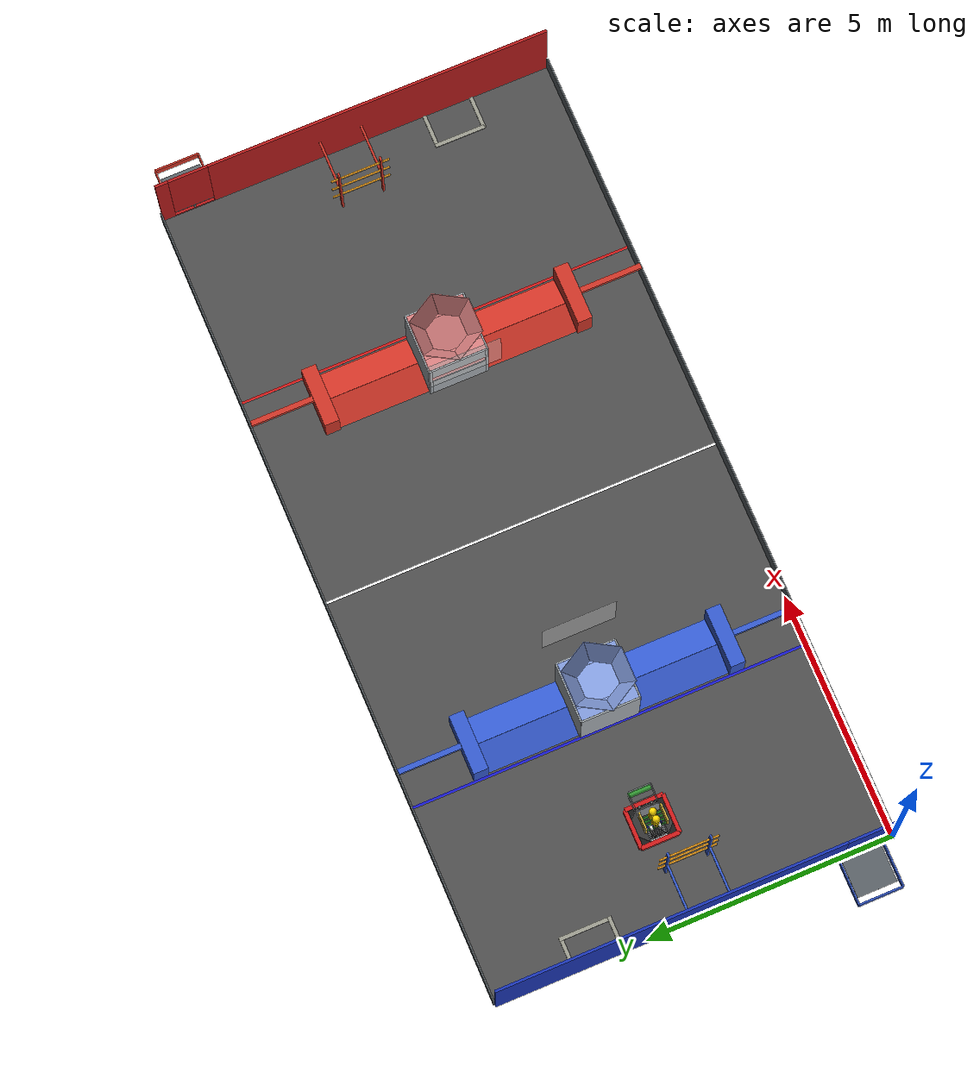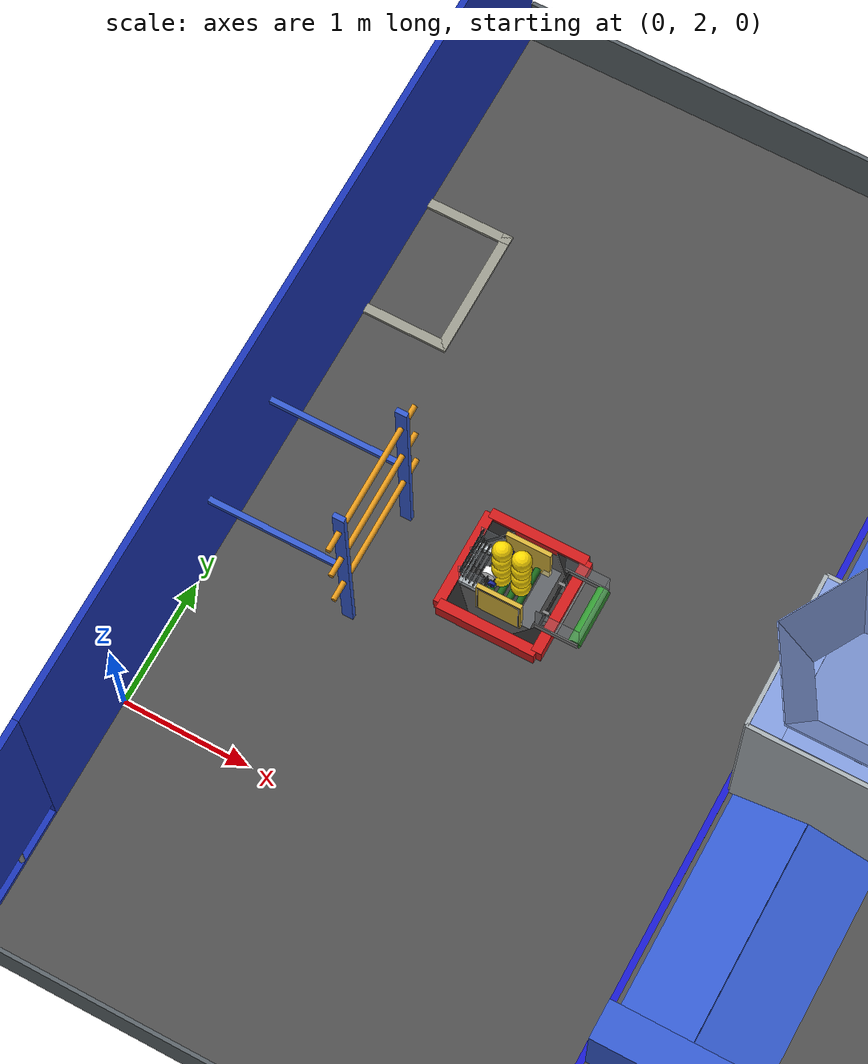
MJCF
<mujoco model="frc_swerve_robot_nofuel">
  <!--
  GENERATED FILE - do not edit.
  Produced from robot.xml by make_nofuel_models.py.
  Re-run that script after changing the source model.
--><compiler angle="radian" autolimits="true" />

  <option gravity="0 0 -9.81" timestep="0.005" solver="PGS" iterations="50" />

  <visual>
    <headlight ambient="0.5 0.5 0.5" />
  </visual>

  <default>
    <joint damping="0.1" armature="0.001" />
    <geom friction="0.3 0.005 0.0001" condim="3" />
    <motor ctrllimited="true" ctrlrange="-100 100" />
    <default class="fuel">
      <geom friction="0.8 0.005 0.0001" condim="3" />
    </default>
  </default>

  <asset>
    <material name="chassis_mat" rgba="0.2 0.2 0.2 1" />
    <material name="bumper_mat" rgba="0.8 0.1 0.1 1" />
    <material name="wheel_mat" rgba="0.1 0.1 0.1 1" />
    <material name="module_mat" rgba="0.4 0.4 0.4 1" />
    <material name="roller_mat" rgba="0.2 0.6 0.2 1" />
    <material name="bar_mat" rgba="0.5 0.5 0.5 1" />
    <material name="polycarb_mat" rgba="0.8 0.85 0.9 0.3" />
    <material name="aluminum_mat" rgba="0.75 0.78 0.8 1" />
    <material name="dark_green_mat" rgba="0.1 0.4 0.1 1" />
    <material name="dark_blue_mat" rgba="0.1 0.15 0.6 1" />
    <material name="red_mat" rgba="0.8 0.1 0.1 1" />
    <material name="white_mat" rgba="0.95 0.95 0.95 1" />
    <material name="gold_mat" rgba="0.83 0.69 0.22 1" />
    <material name="led_mat" rgba="0.1 0.1 0.1 1" emission="1" />
    <!-- Right-triangle prism: right angle at origin, legs along +X and +Y, 3" legs, chassis height -->
    <mesh name="corner_wedge" vertex="0 0 -0.0254  0.18 0 -0.0254  0 0.18 -0.0254  0 0 0.0254  0.18 0 0.0254  0 0.18 0.0254" face="0 2 1  3 4 5  0 3 5  0 5 2  0 1 4  0 4 3  1 2 5  1 5 4" />
  </asset>

  <include file="field_nofuel.xml" />

  <worldbody>
    <!-- Robot base (chassis) - freejoint allows 6DOF movement -->
    <!-- Starting position: blue alliance zone, centered on field width -->
    <body name="chassis" pos="2.0 4.035 0.07">
      <freejoint name="chassis_joint" />

      <!-- IMU site for sensors -->
      <site name="imu_site" pos="0 0 0" size="0.01" />

      <!-- Chassis geometry (27.5" x 27.5" x ~4" frame) -->
      <geom name="chassis_geom" type="box" size="0.349 0.349 0.027" mass="34.6" material="chassis_mat" contype="2" conaffinity="1" />

      <!-- Corner wedges (swerve module mounts) -->
      <geom name="corner_fl" type="mesh" mesh="corner_wedge" pos="0.349 0.349 0.0524" euler="0 0 3.14159" mass="0.2" material="wheel_mat" contype="0" conaffinity="0" />
      <geom name="corner_fr" type="mesh" mesh="corner_wedge" pos="0.349 -0.349 0.0524" euler="0 0 1.5708" mass="0.2" material="wheel_mat" contype="0" conaffinity="0" />
      <geom name="corner_bl" type="mesh" mesh="corner_wedge" pos="-0.349 0.349 0.0524" euler="0 0 -1.5708" mass="0.2" material="wheel_mat" contype="0" conaffinity="0" />
      <geom name="corner_br" type="mesh" mesh="corner_wedge" pos="-0.349 -0.349 0.0524" mass="0.2" material="wheel_mat" contype="0" conaffinity="0" />

      <!-- Bumpers (3.25" thick, 5.5" tall, top 3" above chassis) -->
      <geom name="bumper_front" type="box" pos="0.39 0 0.03128" size="0.04 0.39 0.06993" mass="2" material="bumper_mat" friction="0.4 0.005 0.0001" contype="2" conaffinity="1" />
      <geom name="bumper_back" type="box" pos="-0.39 0 0.03128" size="0.04 0.39 0.06993" mass="2" material="bumper_mat" friction="0.4 0.005 0.0001" contype="2" conaffinity="1" />
      <geom name="bumper_left" type="box" pos="0 0.39 0.03128" size="0.39 0.04 0.06993" mass="2" material="bumper_mat" friction="0.4 0.005 0.0001" contype="2" conaffinity="1" />
      <geom name="bumper_right" type="box" pos="0 -0.39 0.03128" size="0.39 0.04 0.06993" mass="2" material="bumper_mat" friction="0.4 0.005 0.0001" contype="2" conaffinity="1" />

      <!-- Front Left Module -->
      <body name="fl_module" pos="0.28 0.28 -0.02">
        <joint name="fl_steer" type="hinge" axis="0 0 1" damping="1.0" armature="0.011" frictionloss="2.0" />
        <geom name="fl_housing" type="cylinder" size="0.04 0.03" mass="1" material="wheel_mat" contype="0" conaffinity="0" />
        <body name="fl_wheel_body" pos="0 0 0">
          <joint name="fl_drive" type="hinge" axis="0 1 0" damping="0.01" armature="0.0025" />
          <geom name="fl_wheel" type="cylinder" size="0.05 0.02" euler="1.5708 0 0" mass="0.5" material="wheel_mat" friction="1.5 0.005 0.0001" contype="2" conaffinity="1" />
        </body>
      </body>

      <!-- Front Right Module -->
      <body name="fr_module" pos="0.28 -0.28 -0.02">
        <joint name="fr_steer" type="hinge" axis="0 0 1" damping="1.0" armature="0.011" frictionloss="2.0" />
        <geom name="fr_housing" type="cylinder" size="0.04 0.03" mass="1" material="wheel_mat" contype="0" conaffinity="0" />
        <body name="fr_wheel_body" pos="0 0 0">
          <joint name="fr_drive" type="hinge" axis="0 1 0" damping="0.01" armature="0.0025" />
          <geom name="fr_wheel" type="cylinder" size="0.05 0.02" euler="1.5708 0 0" mass="0.5" material="wheel_mat" friction="1.5 0.005 0.0001" contype="2" conaffinity="1" />
        </body>
      </body>

      <!-- Back Left Module -->
      <body name="bl_module" pos="-0.28 0.28 -0.02">
        <joint name="bl_steer" type="hinge" axis="0 0 1" damping="1.0" armature="0.011" frictionloss="2.0" />
        <geom name="bl_housing" type="cylinder" size="0.04 0.03" mass="1" material="wheel_mat" contype="0" conaffinity="0" />
        <body name="bl_wheel_body" pos="0 0 0">
          <joint name="bl_drive" type="hinge" axis="0 1 0" damping="0.01" armature="0.0025" />
          <geom name="bl_wheel" type="cylinder" size="0.05 0.02" euler="1.5708 0 0" mass="0.5" material="wheel_mat" friction="1.5 0.005 0.0001" contype="2" conaffinity="1" />
        </body>
      </body>

      <!-- Back Right Module -->
      <body name="br_module" pos="-0.28 -0.28 -0.02">
        <joint name="br_steer" type="hinge" axis="0 0 1" damping="1.0" armature="0.011" frictionloss="2.0" />
        <geom name="br_housing" type="cylinder" size="0.04 0.03" mass="1" material="wheel_mat" contype="0" conaffinity="0" />
        <body name="br_wheel_body" pos="0 0 0">
          <joint name="br_drive" type="hinge" axis="0 1 0" damping="0.01" armature="0.0025" />
          <geom name="br_wheel" type="cylinder" size="0.05 0.02" euler="1.5708 0 0" mass="0.5" material="wheel_mat" friction="1.5 0.005 0.0001" contype="2" conaffinity="1" />
        </body>
      </body>

      <!-- Hopper rollers: 4 coupled rollers along Y axis -->
      <body name="hopper_roller_1" pos="-0.121 -0.0285 0.056">
        <joint name="hopper_roller_1_joint" type="hinge" axis="0 1 0" damping="0.001" armature="0.001" />
        <geom name="hopper_roller_1_geom" type="cylinder" size="0.0255 0.2035" euler="1.5708 0 0" mass="0.65" material="dark_green_mat" friction="2.0 0.005 0.0001" contype="2" conaffinity="1" />
      </body>
      <body name="hopper_roller_2" pos="-0.045 -0.0285 0.063">
        <joint name="hopper_roller_2_joint" type="hinge" axis="0 1 0" damping="0.001" armature="0.001" />
        <geom name="hopper_roller_2_geom" type="cylinder" size="0.0255 0.2035" euler="1.5708 0 0" mass="0.65" material="dark_green_mat" friction="2.0 0.005 0.0001" contype="2" conaffinity="1" />
      </body>
      <body name="hopper_roller_3" pos="0.031 -0.0285 0.070">
        <joint name="hopper_roller_3_joint" type="hinge" axis="0 1 0" damping="0.001" armature="0.001" />
        <geom name="hopper_roller_3_geom" type="cylinder" size="0.0255 0.2035" euler="1.5708 0 0" mass="0.65" material="dark_green_mat" friction="2.0 0.005 0.0001" contype="2" conaffinity="1" />
      </body>
      <body name="hopper_roller_4" pos="0.107 -0.0285 0.077">
        <joint name="hopper_roller_4_joint" type="hinge" axis="0 1 0" damping="0.001" armature="0.001" />
        <geom name="hopper_roller_4_geom" type="cylinder" size="0.0255 0.2035" euler="1.5708 0 0" mass="0.65" material="dark_green_mat" friction="2.0 0.005 0.0001" contype="2" conaffinity="1" />
      </body>

      <!-- Hopper walls -->
      <geom name="hopper_wall_left" type="box" pos="0.02 0.1925 0.2225" size="0.177 0.0175 0.1955" mass="1.0" material="gold_mat" contype="2" conaffinity="1" />
      <geom name="hopper_wall_right" type="box" pos="0.02 -0.2495 0.2225" size="0.177 0.0175 0.1955" mass="1.0" material="gold_mat" contype="2" conaffinity="1" />

      <!-- LED strips on outside of hopper walls (inverted U shape) -->
      <!-- Left wall LEDs (outer face y=0.21, strips 2mm out) -->
      <geom name="led_left_0" type="box" pos="-0.142 0.212 0.2225" size="0.005 0.002 0.1805" mass="0.003" material="led_mat" contype="0" conaffinity="0" />
      <geom name="led_left_1" type="box" pos="0.02 0.212 0.403" size="0.167 0.002 0.005" mass="0.003" material="led_mat" contype="0" conaffinity="0" />
      <geom name="led_left_2" type="box" pos="0.182 0.212 0.2225" size="0.005 0.002 0.1805" mass="0.003" material="led_mat" contype="0" conaffinity="0" />
      <!-- Right wall LEDs (outer face y=-0.267, strips 2mm out) -->
      <geom name="led_right_0" type="box" pos="-0.142 -0.269 0.2225" size="0.005 0.002 0.1805" mass="0.003" material="led_mat" contype="0" conaffinity="0" />
      <geom name="led_right_1" type="box" pos="0.02 -0.269 0.403" size="0.167 0.002 0.005" mass="0.003" material="led_mat" contype="0" conaffinity="0" />
      <geom name="led_right_2" type="box" pos="0.182 -0.269 0.2225" size="0.005 0.002 0.1805" mass="0.003" material="led_mat" contype="0" conaffinity="0" />

      <!-- Polycarbonate plate between hopper and intake -->
      <geom name="hopper_intake_plate" type="box" pos="0.2116 -0.0254 0.1143" size="0.0615 0.2413 0.0016" mass="0.3" material="polycarb_mat" contype="2" conaffinity="1" />

      <!-- Shooter base: U-shaped mount on back of frame -->
      <geom name="shooter_base_back" type="box" pos="-0.3363 0 0.0524" size="0.0127 0.166 0.0254" mass="0.5" material="aluminum_mat" contype="2" conaffinity="1" />
      <geom name="shooter_base_left" type="box" pos="-0.2475 0.146 0.0524" size="0.1015 0.02 0.0254" mass="0.5" material="aluminum_mat" contype="2" conaffinity="1" />
      <geom name="shooter_base_right" type="box" pos="-0.2475 -0.146 0.0524" size="0.1015 0.02 0.0254" mass="0.5" material="aluminum_mat" contype="2" conaffinity="1" />

      <!-- Shooter walls: two side walls + center divider, 0.33m tall from chassis top -->
      <geom name="shooter_wall_left" type="box" pos="-0.2475 0.166 0.192" size="0.1015 0.003 0.165" mass="0.3" material="polycarb_mat" contype="2" conaffinity="1" />
      <geom name="shooter_wall_right" type="box" pos="-0.2475 -0.166 0.192" size="0.1015 0.003 0.165" mass="0.3" material="polycarb_mat" contype="2" conaffinity="1" />
      <geom name="shooter_wall_center" type="box" pos="-0.2475 0 0.192" size="0.1015 0.003 0.165" mass="0.3" material="polycarb_mat" contype="2" conaffinity="1" />

      <!-- Shooter feeding wheels: 4 wheels (2 per channel), all coupled -->
      <body name="shooter_feed_inner_left" pos="-0.098 0.0285 0.247">
        <joint name="shooter_feed_inner_left_joint" type="hinge" axis="0 1 0" damping="0.001" armature="0.001" />
        <geom name="shooter_feed_inner_left_geom" type="cylinder" size="0.0283 0.0125" euler="1.5708 0 0" mass="0.036" material="dark_blue_mat" friction="2.0 0.005 0.0001" contype="2" conaffinity="1" />
      </body>
      <body name="shooter_feed_inner_right" pos="-0.098 -0.0285 0.247">
        <joint name="shooter_feed_inner_right_joint" type="hinge" axis="0 1 0" damping="0.001" armature="0.001" />
        <geom name="shooter_feed_inner_right_geom" type="cylinder" size="0.0283 0.0125" euler="1.5708 0 0" mass="0.036" material="dark_blue_mat" friction="2.0 0.005 0.0001" contype="2" conaffinity="1" />
      </body>
      <body name="shooter_feed_outer_left" pos="-0.098 0.1371 0.247">
        <joint name="shooter_feed_outer_left_joint" type="hinge" axis="0 1 0" damping="0.001" armature="0.001" />
        <geom name="shooter_feed_outer_left_geom" type="cylinder" size="0.0283 0.0125" euler="1.5708 0 0" mass="0.036" material="dark_blue_mat" friction="2.0 0.005 0.0001" contype="2" conaffinity="1" />
      </body>
      <body name="shooter_feed_outer_right" pos="-0.098 -0.1371 0.247">
        <joint name="shooter_feed_outer_right_joint" type="hinge" axis="0 1 0" damping="0.001" armature="0.001" />
        <geom name="shooter_feed_outer_right_geom" type="cylinder" size="0.0283 0.0125" euler="1.5708 0 0" mass="0.036" material="dark_blue_mat" friction="2.0 0.005 0.0001" contype="2" conaffinity="1" />
      </body>

      <!-- Shooter flywheels: one per channel, each independently driven -->
      <body name="shooter_flywheel_left" pos="-0.142 0.083 0.285">
        <joint name="shooter_flywheel_left_joint" type="hinge" axis="0 1 0" damping="0.00001" armature="0.001" />
        <geom name="shooter_flywheel_left_geom" type="cylinder" size="0.05 0.026" euler="1.5708 0 0" mass="0.54" material="white_mat" friction="2.0 0.005 0.0001" contype="2" conaffinity="1" />
      </body>
      <body name="shooter_flywheel_right" pos="-0.142 -0.083 0.285">
        <joint name="shooter_flywheel_right_joint" type="hinge" axis="0 1 0" damping="0.00001" armature="0.001" />
        <geom name="shooter_flywheel_right_geom" type="cylinder" size="0.05 0.026" euler="1.5708 0 0" mass="0.54" material="white_mat" friction="2.0 0.005 0.0001" contype="2" conaffinity="1" />
      </body>

      <!-- Shooter churros: 10 track guides from left to right wall -->
      <geom name="shooter_churro_1" type="cylinder" pos="-0.160 0 0.086" size="0.007 0.166" euler="1.5708 0 0" mass="0.1" material="wheel_mat" contype="2" conaffinity="1" />
      <geom name="shooter_churro_2" type="cylinder" pos="-0.198 0 0.086" size="0.007 0.166" euler="1.5708 0 0" mass="0.1" material="wheel_mat" contype="2" conaffinity="1" />
      <geom name="shooter_churro_3" type="cylinder" pos="-0.234 0 0.101" size="0.007 0.166" euler="1.5708 0 0" mass="0.1" material="wheel_mat" contype="2" conaffinity="1" />
      <geom name="shooter_churro_4" type="cylinder" pos="-0.266 0 0.123" size="0.007 0.166" euler="1.5708 0 0" mass="0.1" material="wheel_mat" contype="2" conaffinity="1" />
      <geom name="shooter_churro_5" type="cylinder" pos="-0.294 0 0.151" size="0.007 0.166" euler="1.5708 0 0" mass="0.1" material="wheel_mat" contype="2" conaffinity="1" />
      <geom name="shooter_churro_6" type="cylinder" pos="-0.315 0 0.184" size="0.007 0.166" euler="1.5708 0 0" mass="0.1" material="wheel_mat" contype="2" conaffinity="1" />
      <geom name="shooter_churro_7" type="cylinder" pos="-0.328 0 0.221" size="0.007 0.166" euler="1.5708 0 0" mass="0.1" material="wheel_mat" contype="2" conaffinity="1" />
      <geom name="shooter_churro_8" type="cylinder" pos="-0.335 0 0.260" size="0.007 0.166" euler="1.5708 0 0" mass="0.1" material="wheel_mat" contype="2" conaffinity="1" />
      <geom name="shooter_churro_9" type="cylinder" pos="-0.333 0 0.299" size="0.007 0.166" euler="1.5708 0 0" mass="0.1" material="wheel_mat" contype="2" conaffinity="1" />
      <geom name="shooter_churro_10" type="cylinder" pos="-0.323 0 0.337" size="0.007 0.166" euler="1.5708 0 0" mass="0.1" material="wheel_mat" contype="2" conaffinity="1" />

      <!-- Shooter feed axle -->
      <geom name="shooter_feed_axle" type="cylinder" pos="-0.098 0 0.247" size="0.007 0.166" euler="1.5708 0 0" mass="0.3" material="wheel_mat" contype="2" conaffinity="1" />

      <!-- Shooter flywheel axle -->
      <geom name="shooter_flywheel_axle" type="cylinder" pos="-0.142 0 0.285" size="0.007 0.166" euler="1.5708 0 0" mass="0.3" material="wheel_mat" contype="2" conaffinity="1" />

      <!-- Intake support blocks: 2x1" aluminum, 5.875" tall from chassis top -->
      <geom name="intake_support_left" type="box" pos="0.324 0.1207 0.1016" size="0.0254 0.0127 0.0746" mass="0.4" material="bar_mat" contype="2" conaffinity="1" />
      <geom name="intake_support_right" type="box" pos="0.324 -0.1207 0.1016" size="0.0254 0.0127 0.0746" mass="0.4" material="bar_mat" contype="2" conaffinity="1" />

      <!-- Intake assembly: pivots on hinge 0.025m behind frame edge, 4.875" above chassis top -->
      <body name="intake" pos="0.324 0 0.151">
        <joint name="intake_hinge" type="hinge" axis="0 1 0" damping="0.5" armature="0.005" limited="true" range="-1.5708 0.21" />

        <!-- Axle bar through shields -->
        <geom name="intake_axle_bar" type="cylinder" pos="0 0 0" size="0.01 0.2275" euler="1.5708 0 0" mass="0.8" material="wheel_mat" contype="2" conaffinity="1" />

        <!-- Roller: spinning cylinder -->
        <body name="intake_roller" pos="0.279 0 0">
          <joint name="intake_roller_joint" type="hinge" axis="0 1 0" damping="0.001" armature="0.001" />
          <geom name="intake_roller_geom" type="cylinder" size="0.0508 0.2275" euler="1.5708 0 0" mass="0.5" material="roller_mat" friction="2.0 0.005 0.0001" contype="2" conaffinity="1" />
        </body>

        <!-- Backing bar -->
        <geom name="intake_backing_bar" type="cylinder" pos="0.127 0 -0.021" size="0.00735 0.2275" euler="1.5708 0 0" mass="1.5" material="bar_mat" contype="2" conaffinity="1" />

        <!-- Side bars -->
        <geom name="intake_bar_left" type="box" pos="0.1395 0.235 0.003" size="0.1715 0.005 0.03" mass="0.6" material="bar_mat" contype="2" conaffinity="1" />
        <geom name="intake_bar_right" type="box" pos="0.1395 -0.235 0.003" size="0.1715 0.005 0.03" mass="0.6" material="bar_mat" contype="2" conaffinity="1" />

        <!-- Polycarbonate side shields -->
        <geom name="intake_shield_left" type="box" pos="0.1395 0.2285 0.152" size="0.1715 0.0015 0.119" mass="0.3" material="polycarb_mat" contype="2" conaffinity="1" />
        <geom name="intake_shield_right" type="box" pos="0.1395 -0.2285 0.152" size="0.1715 0.0015 0.119" mass="0.3" material="polycarb_mat" contype="2" conaffinity="1" />

        <!-- Front polycarbonate shield -->
        <geom name="intake_shield_front" type="box" pos="0.3125 0 0.152" size="0.0015 0.2275 0.119" mass="0.4" material="polycarb_mat" contype="2" conaffinity="1" />
      </body>

    </body>
  </worldbody>

  <!-- Actuators: voltage-controlled motors -->
  <actuator>
    <motor name="fl_steer_motor" joint="fl_steer" gear="1" />
    <motor name="fr_steer_motor" joint="fr_steer" gear="1" />
    <motor name="bl_steer_motor" joint="bl_steer" gear="1" />
    <motor name="br_steer_motor" joint="br_steer" gear="1" />

    <motor name="fl_drive_motor" joint="fl_drive" gear="1" />
    <motor name="fr_drive_motor" joint="fr_drive" gear="1" />
    <motor name="bl_drive_motor" joint="bl_drive" gear="1" />
    <motor name="br_drive_motor" joint="br_drive" gear="1" />

    <motor name="intake_hinge_motor" joint="intake_hinge" gear="1" />
    <motor name="intake_roller_motor" joint="intake_roller_joint" gear="1" />

    <motor name="hopper_roller_motor" joint="hopper_roller_1_joint" gear="1" />

    <motor name="shooter_feed_motor" joint="shooter_feed_inner_left_joint" gear="1" />

    <motor name="shooter_flywheel_motor" joint="shooter_flywheel_left_joint" gear="1" />
  </actuator>

  <!-- Sensors for feedback to WPILib -->
  <sensor>
    <jointpos name="fl_steer_pos" joint="fl_steer" />
    <jointpos name="fr_steer_pos" joint="fr_steer" />
    <jointpos name="bl_steer_pos" joint="bl_steer" />
    <jointpos name="br_steer_pos" joint="br_steer" />

    <jointpos name="fl_drive_pos" joint="fl_drive" />
    <jointpos name="fr_drive_pos" joint="fr_drive" />
    <jointpos name="bl_drive_pos" joint="bl_drive" />
    <jointpos name="br_drive_pos" joint="br_drive" />

    <jointvel name="fl_steer_vel" joint="fl_steer" />
    <jointvel name="fr_steer_vel" joint="fr_steer" />
    <jointvel name="bl_steer_vel" joint="bl_steer" />
    <jointvel name="br_steer_vel" joint="br_steer" />

    <jointvel name="fl_drive_vel" joint="fl_drive" />
    <jointvel name="fr_drive_vel" joint="fr_drive" />
    <jointvel name="bl_drive_vel" joint="bl_drive" />
    <jointvel name="br_drive_vel" joint="br_drive" />

    <gyro name="chassis_gyro" site="imu_site" />
    <accelerometer name="chassis_accel" site="imu_site" />
  </sensor>

  <equality>
    <joint joint1="hopper_roller_1_joint" joint2="hopper_roller_2_joint" polycoef="0 1 0 0 0" />
    <joint joint1="hopper_roller_1_joint" joint2="hopper_roller_3_joint" polycoef="0 1 0 0 0" />
    <joint joint1="hopper_roller_1_joint" joint2="hopper_roller_4_joint" polycoef="0 1 0 0 0" />
    <joint joint1="shooter_feed_inner_left_joint" joint2="shooter_feed_inner_right_joint" polycoef="0 1 0 0 0" />
    <joint joint1="shooter_feed_inner_left_joint" joint2="shooter_feed_outer_left_joint" polycoef="0 1 0 0 0" />
    <joint joint1="shooter_feed_inner_left_joint" joint2="shooter_feed_outer_right_joint" polycoef="0 1 0 0 0" />
    <joint joint1="shooter_flywheel_left_joint" joint2="shooter_flywheel_right_joint" polycoef="0 1 0 0 0" />
  </equality>

  <contact>
  </contact>

</mujoco>

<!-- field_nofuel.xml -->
<mujoco model="rebuilt_field">
  <!--
  GENERATED FILE - do not edit.
  Produced from field.xml by make_nofuel_models.py.
  Re-run that script after changing the source model.
--><asset>
    <!-- Field surface -->
    <material name="carpet_mat" rgba="0.3 0.3 0.3 1" />
    <!-- Structural -->
    <material name="wall_mat" rgba="0.35 0.38 0.4 1" />
    <material name="metal_mat" rgba="0.5 0.5 0.5 1" />
    <!-- Alliance colors -->
    <material name="blue_wall_mat" rgba="0.1 0.2 0.7 1" />
    <material name="red_wall_mat" rgba="0.7 0.1 0.1 1" />
    <material name="blue_accent_mat" rgba="0.2 0.35 0.8 1" />
    <material name="red_accent_mat" rgba="0.8 0.2 0.15 1" />
    <!-- Hub -->
    <material name="hub_mat" rgba="0.65 0.68 0.7 1" />
    <material name="blue_hub_mat" rgba="0.5 0.6 0.85 1" />
    <material name="red_hub_mat" rgba="0.85 0.5 0.5 1" />
    <material name="net_mat" rgba="0.9 0.9 0.9 0.4" />
    <!-- Depot -->
    <material name="depot_mat" rgba="0.6 0.6 0.55 1" />
    <!-- Lines -->
    <material name="line_white_mat" rgba="1.0 1.0 1.0 1" />
    <material name="line_blue_mat" rgba="0.1 0.1 0.8 1" />
    <material name="line_red_mat" rgba="0.8 0.1 0.1 1" />
    <!-- Bumps/ramps -->
    <material name="bump_mat" rgba="0.35 0.35 0.35 1" />
    <!-- Fuel -->
    <material name="fuel_mat" rgba="1.0 0.85 0.0 1" />
    <!-- Rung -->
    <material name="rung_mat" rgba="0.9 0.6 0.1 1" />
  </asset>

  <worldbody>
    <!-- ========== FIELD FLOOR ========== -->
    <!-- Carpet: 16.54m x 8.07m, centered at (8.27, 4.035, 0) -->
    <geom name="field_floor" type="box" pos="8.27 4.035 -0.005" size="8.27 4.035 0.005" material="carpet_mat" friction="1.0 0.005 0.0001" contype="1" conaffinity="3" />

    <!-- ========== FIELD LINES (visual only, no collision) ========== -->
    <!-- Center line: X=8.27, 0.05m wide -->
    <geom name="center_line" type="box" pos="8.27 4.035 0.001" size="0.025 4.035 0.001" material="line_white_mat" contype="0" conaffinity="0" />
    <!-- Blue alliance line: 4.0m from blue wall, 0.05m wide -->
    <geom name="blue_alliance_line" type="box" pos="4.0 4.035 0.001" size="0.025 4.035 0.001" material="line_blue_mat" contype="0" conaffinity="0" />
    <!-- Red alliance line: 4.0m from red wall (16.54 - 4.0 = 12.54m) -->
    <geom name="red_alliance_line" type="box" pos="12.54 4.035 0.001" size="0.025 4.035 0.001" material="line_red_mat" contype="0" conaffinity="0" />

    <!-- ========== GUARDRAILS (long edges, 0.5m tall) ========== -->
    <!-- Wall thickness: 0.03m -->
    <!-- Near guardrail (Y=0 side) -->
    <geom name="guardrail_near" type="box" pos="8.27 -0.015 0.25" size="8.27 0.015 0.25" material="wall_mat" contype="1" conaffinity="3" />
    <!-- Far guardrail (Y=8.07m side) -->
    <geom name="guardrail_far" type="box" pos="8.27 8.085 0.25" size="8.27 0.015 0.25" material="wall_mat" contype="1" conaffinity="3" />

    <!-- ========== ALLIANCE WALLS (short edges, 2.0m tall, 0.05m thick) ========== -->
    <!-- Blue alliance wall (X=0), split around corral hole
         Corral: 0.813m wide, 0.178m tall, bottom at Z=0.047
         Right edge at Y=0.26, left edge at Y=1.073 -->
    <!-- Right of hole (Y=0 to 0.26) -->
    <geom name="blue_wall_r" type="box" pos="-0.025 0.13 1.0" size="0.025 0.13 1.0" material="blue_wall_mat" contype="1" conaffinity="3" />
    <!-- Left of hole (Y=1.073 to 8.07) -->
    <geom name="blue_wall_l" type="box" pos="-0.025 4.5715 1.0" size="0.025 3.4985 1.0" material="blue_wall_mat" contype="1" conaffinity="3" />
    <!-- Below hole (Z=0 to 0.047) -->
    <geom name="blue_wall_below" type="box" pos="-0.025 0.6665 0.0235" size="0.025 0.4065 0.0235" material="blue_wall_mat" contype="1" conaffinity="3" />
    <!-- Above hole (Z=0.225 to 2.0) -->
    <geom name="blue_wall_above" type="box" pos="-0.025 0.6665 1.1125" size="0.025 0.4065 0.8875" material="blue_wall_mat" contype="1" conaffinity="3" />
    <!-- Corral divider cylinder in middle of hole -->
    <geom name="blue_corral_post" type="cylinder" pos="-0.025 0.6665 0.136" size="0.021 0.089" material="metal_mat" contype="1" conaffinity="3" />
    <!-- Blue CORRAL: 0.9x0.9m area behind wall, 0.2m tall walls
         Centered on hole (Y=0.6665), extends X=-0.05 to X=-0.95 -->
    <body name="blue_corral" pos="-0.5 0.6665 0">
      <!-- Back wall -->
      <geom name="blue_corral_back" type="box" pos="-0.45 0 0.1" size="0.015 0.45 0.1" material="blue_accent_mat" contype="1" conaffinity="3" />
      <!-- Right wall -->
      <geom name="blue_corral_right" type="box" pos="0 -0.45 0.1" size="0.45 0.015 0.1" material="blue_accent_mat" contype="1" conaffinity="3" />
      <!-- Left wall -->
      <geom name="blue_corral_left" type="box" pos="0 0.45 0.1" size="0.45 0.015 0.1" material="blue_accent_mat" contype="1" conaffinity="3" />
      <!-- Ramp from hole lip (X=-0.05, Z=0.047) down to ground (X=-0.8, Z=0)
           Length=0.75m, drop=0.047m, angle=0.063 rad -->
      <geom name="blue_corral_ramp" type="box" pos="0.075 0 0.0235" size="0.376 0.4065 0.005" euler="0 -0.063 0" material="wall_mat" contype="1" conaffinity="3" />
    </body>

    <!-- Red alliance wall (X=16.54m), split around corral hole (180° mirror)
         Hole spans Y=6.997 to 7.81 -->
    <!-- Right of hole (from red perspective, Y=7.81 to 8.07) -->
    <geom name="red_wall_r" type="box" pos="16.565 7.94 1.0" size="0.025 0.13 1.0" material="red_wall_mat" contype="1" conaffinity="3" />
    <!-- Left of hole (from red perspective, Y=0 to 6.997) -->
    <geom name="red_wall_l" type="box" pos="16.565 3.4985 1.0" size="0.025 3.4985 1.0" material="red_wall_mat" contype="1" conaffinity="3" />
    <!-- Below hole -->
    <geom name="red_wall_below" type="box" pos="16.565 7.4035 0.0235" size="0.025 0.4065 0.0235" material="red_wall_mat" contype="1" conaffinity="3" />
    <!-- Above hole -->
    <geom name="red_wall_above" type="box" pos="16.565 7.4035 1.1125" size="0.025 0.4065 0.8875" material="red_wall_mat" contype="1" conaffinity="3" />
    <!-- Corral divider cylinder in middle of hole -->
    <geom name="red_corral_post" type="cylinder" pos="16.565 7.4035 0.136" size="0.021 0.089" material="metal_mat" contype="1" conaffinity="3" />
    <!-- Red CORRAL: 180° mirror, extends X=16.59 to X=17.49 -->
    <body name="red_corral" pos="17.04 7.4035 0">
      <!-- Back wall -->
      <geom name="red_corral_back" type="box" pos="0.45 0 0.1" size="0.015 0.45 0.1" material="red_accent_mat" contype="1" conaffinity="3" />
      <!-- Right wall (from red perspective) -->
      <geom name="red_corral_right" type="box" pos="0 0.45 0.1" size="0.45 0.015 0.1" material="red_accent_mat" contype="1" conaffinity="3" />
      <!-- Left wall (from red perspective) -->
      <geom name="red_corral_left" type="box" pos="0 -0.45 0.1" size="0.45 0.015 0.1" material="red_accent_mat" contype="1" conaffinity="3" />
      <!-- Ramp from hole lip down to ground -->
      <geom name="red_corral_ramp" type="box" pos="-0.075 0 0.0235" size="0.376 0.4065 0.005" euler="0 0.063 0" material="wall_mat" contype="1" conaffinity="3" />
    </body>

    <!-- ========== BLUE ALLIANCE ELEMENTS ========== -->

    <body name="blue_depot" pos="0.3425 5.97 0">
      <!-- Front side (facing red, at X=0.685 from wall) -->
      <geom name="blue_depot_front" type="box" pos="0.3045 0 0.014" size="0.038 0.53 0.014" material="depot_mat" contype="1" conaffinity="3" />
      <!-- Left side (Y=6.50, toward far guardrail) -->
      <geom name="blue_depot_left" type="box" pos="0 0.492 0.014" size="0.3425 0.038 0.014" material="depot_mat" contype="1" conaffinity="3" />
      <!-- Right side (Y=5.44, toward near guardrail) -->
      <geom name="blue_depot_right" type="box" pos="0 -0.492 0.014" size="0.3425 0.038 0.014" material="depot_mat" contype="1" conaffinity="3" />
    </body>

    <body name="blue_tower" pos="1.064 3.747 0">
      <!-- Right post (center Y offset = 3.319 - 3.747 = -0.428) -->
      <geom name="blue_tower_post_r" type="box" pos="0 -0.428 0.915" size="0.04445 0.01905 0.915" material="blue_accent_mat" contype="1" conaffinity="3" />
      <!-- Left post (center Y offset = 4.174 - 3.747 = 0.427) -->
      <geom name="blue_tower_post_l" type="box" pos="0 0.427 0.915" size="0.04445 0.01905 0.915" material="blue_accent_mat" contype="1" conaffinity="3" />
      <!-- Rungs: span from Y=3.3-0.15=3.15 to Y=4.193+0.15=4.343
           half-length = (4.343-3.15)/2 = 0.597, centered at body origin -->
      <geom name="blue_rung_low" type="cylinder" pos="0 0 0.686" size="0.021 0.597" euler="1.5708 0 0" material="rung_mat" contype="1" conaffinity="3" />
      <geom name="blue_rung_mid" type="cylinder" pos="0 0 1.143" size="0.021 0.597" euler="1.5708 0 0" material="rung_mat" contype="1" conaffinity="3" />
      <geom name="blue_rung_high" type="cylinder" pos="0 0 1.6" size="0.021 0.597" euler="1.5708 0 0" material="rung_mat" contype="1" conaffinity="3" />
      <geom name="blue_tower_support_r" type="box" pos="-0.554 -0.428 0.912" size="0.51 0.022 0.022" material="blue_accent_mat" contype="1" conaffinity="3" />
      <geom name="blue_tower_support_l" type="box" pos="-0.554 0.427 0.912" size="0.51 0.022 0.022" material="blue_accent_mat" contype="1" conaffinity="3" />
    </body>

    <body name="blue_hub" pos="4.622 4.035 0">
      <!-- Hub walls (1.435m tall) -->
      <geom name="blue_hub_back" type="box" pos="-0.597 0 0.7175" size="0.015 0.597 0.7175" material="hub_mat" contype="1" conaffinity="3" />
      <!-- Front wall split around output hole: 1.09m wide, 0.225m tall, bottom at Z=0.765 -->
      <geom name="blue_hub_front_l" type="box" pos="0.597 0.571 0.7175" size="0.015 0.026 0.7175" material="hub_mat" contype="1" conaffinity="3" />
      <geom name="blue_hub_front_r" type="box" pos="0.597 -0.571 0.7175" size="0.015 0.026 0.7175" material="hub_mat" contype="1" conaffinity="3" />
      <geom name="blue_hub_front_below" type="box" pos="0.597 0 0.3825" size="0.015 0.545 0.3825" material="hub_mat" contype="1" conaffinity="3" />
      <geom name="blue_hub_front_above" type="box" pos="0.597 0 1.2125" size="0.015 0.545 0.2225" material="hub_mat" contype="1" conaffinity="3" />
      <!-- Interior ramp: 21° from back wall (Z=1.223) down to front hole (Z=0.765)
           Slope length = 1.279m, width = 1.09m -->
      <geom name="blue_hub_ramp" type="box" pos="0 0 0.994" size="0.640 0.545 0.005" euler="0 0.3665 0" material="blue_hub_mat" contype="1" conaffinity="3" />
      <geom name="blue_hub_left" type="box" pos="0 0.597 0.7175" size="0.597 0.015 0.7175" material="hub_mat" contype="1" conaffinity="3" />
      <geom name="blue_hub_right" type="box" pos="0 -0.597 0.7175" size="0.597 0.015 0.7175" material="hub_mat" contype="1" conaffinity="3" />
      <!-- Gap panels at hub top (Z=1.435) sealing square-to-hexagon transition -->
      <geom name="blue_hub_gap_px" type="box" pos="0.465 0 1.435" size="0.115 0.58 0.005" material="blue_hub_mat" contype="1" conaffinity="3" />
      <geom name="blue_hub_gap_nx" type="box" pos="-0.465 0 1.435" size="0.115 0.58 0.005" material="blue_hub_mat" contype="1" conaffinity="3" />
      <geom name="blue_hub_gap_py" type="box" pos="0 0.465 1.435" size="0.35 0.115 0.005" material="blue_hub_mat" contype="1" conaffinity="3" />
      <geom name="blue_hub_gap_ny" type="box" pos="0 -0.465 1.435" size="0.35 0.115 0.005" material="blue_hub_mat" contype="1" conaffinity="3" />
      <!-- Hexagonal funnel rotated 30° so vertices face alliance walls -->
      <geom name="blue_funnel_30" type="box" pos="0.416 0.24 1.63" size="0.005 0.352 0.234" quat="0.924 -0.075 0.280 0.248" material="blue_hub_mat" contype="1" conaffinity="3" />
      <geom name="blue_funnel_90" type="box" pos="0 0.48 1.63" size="0.005 0.352 0.234" quat="0.677 -0.205 0.205 0.677" material="blue_hub_mat" contype="1" conaffinity="3" />
      <geom name="blue_funnel_150" type="box" pos="-0.416 0.24 1.63" size="0.005 0.352 0.234" quat="0.248 -0.280 0.075 0.924" material="blue_hub_mat" contype="1" conaffinity="3" />
      <geom name="blue_funnel_210" type="box" pos="-0.416 -0.24 1.63" size="0.005 0.352 0.234" quat="0.248 0.280 0.075 -0.924" material="blue_hub_mat" contype="1" conaffinity="3" />
      <geom name="blue_funnel_270" type="box" pos="0 -0.48 1.63" size="0.005 0.352 0.234" quat="0.677 0.205 0.205 -0.677" material="blue_hub_mat" contype="1" conaffinity="3" />
      <geom name="blue_funnel_330" type="box" pos="0.416 -0.24 1.63" size="0.005 0.352 0.234" quat="0.924 0.075 0.280 -0.248" material="blue_hub_mat" contype="1" conaffinity="3" />
      <!-- Net: vertical plane, bottom at Z=1.67, 1.35m tall, 1.47m wide
           0.23m in front of top funnel vertex (X = 0.704 + 0.23 = 0.934) -->
      <geom name="blue_hub_net" type="box" pos="0.934 0 2.345" size="0.005 0.735 0.675" material="net_mat" contype="1" conaffinity="3" />
    </body>

    <!-- Blue BUMP/TRENCH WALLS: 1.194m (X) x 0.3m (Y), 0.7m tall
         Back face at X=4.025 (same as hub), 1.867m gap to hub on each side
         Right wall center Y=1.421, left wall center Y=6.649 -->
    <geom name="blue_wall_right" type="box" pos="4.622 1.421 0.35" size="0.597 0.15 0.35" material="blue_accent_mat" contype="1" conaffinity="3" />
    <geom name="blue_wall_left" type="box" pos="4.622 6.649 0.35" size="0.597 0.15 0.35" material="blue_accent_mat" contype="1" conaffinity="3" />

    <geom name="blue_trench_right" type="box" pos="4.622 0.636 0.616" size="0.051 0.636 0.051" material="blue_accent_mat" contype="1" conaffinity="3" />
    <geom name="blue_trench_left" type="box" pos="4.622 7.435 0.616" size="0.051 0.636 0.051" material="blue_accent_mat" contype="1" conaffinity="3" />

    <body name="blue_bump_right" pos="4.621 2.505 0">
      <geom name="blue_bump_r_back" type="box" pos="-0.28 0 0.0825" size="0.292 0.9335 0.01" euler="0 -0.287 0" material="blue_accent_mat" contype="1" conaffinity="3" />
      <geom name="blue_bump_r_front" type="box" pos="0.28 0 0.0825" size="0.292 0.9335 0.01" euler="0 0.287 0" material="blue_accent_mat" contype="1" conaffinity="3" />
    </body>
    <body name="blue_bump_left" pos="4.621 5.566 0">
      <geom name="blue_bump_l_back" type="box" pos="-0.28 0 0.0825" size="0.292 0.9335 0.01" euler="0 -0.287 0" material="blue_accent_mat" contype="1" conaffinity="3" />
      <geom name="blue_bump_l_front" type="box" pos="0.28 0 0.0825" size="0.292 0.9335 0.01" euler="0 0.287 0" material="blue_accent_mat" contype="1" conaffinity="3" />
    </body>

    <!-- ========== RED ALLIANCE ELEMENTS (180-degree rotation of blue about field center) ========== -->

    <!-- Red DEPOT: 180° rotation of blue depot about (8.27, 4.035)
         Against red wall, Y spans 1.57 to 2.63 -->
    <body name="red_depot" pos="16.1975 2.10 0">
      <!-- Front side (facing blue, at X=16.54-0.685 from blue wall) -->
      <geom name="red_depot_front" type="box" pos="-0.3045 0 0.014" size="0.038 0.53 0.014" material="depot_mat" contype="1" conaffinity="3" />
      <!-- Left side (toward near guardrail from red perspective) -->
      <geom name="red_depot_left" type="box" pos="0 -0.492 0.014" size="0.3425 0.038 0.014" material="depot_mat" contype="1" conaffinity="3" />
      <!-- Right side (toward far guardrail from red perspective) -->
      <geom name="red_depot_right" type="box" pos="0 0.492 0.014" size="0.3425 0.038 0.014" material="depot_mat" contype="1" conaffinity="3" />
    </body>

    <!-- Red BUMPS: 180° rotation of blue bumps -->
    <body name="red_bump_right" pos="11.919 5.565 0">
      <geom name="red_bump_r_back" type="box" pos="0.28 0 0.0825" size="0.292 0.9335 0.01" euler="0 0.287 0" material="red_accent_mat" contype="1" conaffinity="3" />
      <geom name="red_bump_r_front" type="box" pos="-0.28 0 0.0825" size="0.292 0.9335 0.01" euler="0 -0.287 0" material="red_accent_mat" contype="1" conaffinity="3" />
    </body>
    <body name="red_bump_left" pos="11.919 2.504 0">
      <geom name="red_bump_l_back" type="box" pos="0.28 0 0.0825" size="0.292 0.9335 0.01" euler="0 0.287 0" material="red_accent_mat" contype="1" conaffinity="3" />
      <geom name="red_bump_l_front" type="box" pos="-0.28 0 0.0825" size="0.292 0.9335 0.01" euler="0 -0.287 0" material="red_accent_mat" contype="1" conaffinity="3" />
    </body>

    <!-- Red TRENCH POSTS: 180° rotation of blue trench posts -->
    <geom name="red_trench_right" type="box" pos="11.918 7.435 0.616" size="0.051 0.636 0.051" material="red_accent_mat" contype="1" conaffinity="3" />
    <geom name="red_trench_left" type="box" pos="11.918 0.636 0.616" size="0.051 0.636 0.051" material="red_accent_mat" contype="1" conaffinity="3" />

    <!-- Red BUMP/TRENCH WALLS: 180° rotation of blue walls -->
    <geom name="red_wall_right" type="box" pos="11.918 6.649 0.35" size="0.597 0.15 0.35" material="red_accent_mat" contype="1" conaffinity="3" />
    <geom name="red_wall_left" type="box" pos="11.918 1.421 0.35" size="0.597 0.15 0.35" material="red_accent_mat" contype="1" conaffinity="3" />

    <!-- Red HUB: 180° rotation of blue hub about (8.27, 4.035)
         Center X = 16.54 - 4.622 = 11.918 -->
    <body name="red_hub" pos="11.918 4.035 0">
      <!-- Hub walls (1.435m tall) -->
      <geom name="red_hub_back" type="box" pos="0.597 0 0.7175" size="0.015 0.597 0.7175" material="hub_mat" contype="1" conaffinity="3" />
      <!-- Front wall split around output hole -->
      <geom name="red_hub_front_l" type="box" pos="-0.597 -0.571 0.7175" size="0.015 0.026 0.7175" material="hub_mat" contype="1" conaffinity="3" />
      <geom name="red_hub_front_r" type="box" pos="-0.597 0.571 0.7175" size="0.015 0.026 0.7175" material="hub_mat" contype="1" conaffinity="3" />
      <geom name="red_hub_front_below" type="box" pos="-0.597 0 0.3825" size="0.015 0.545 0.3825" material="hub_mat" contype="1" conaffinity="3" />
      <geom name="red_hub_front_above" type="box" pos="-0.597 0 1.2125" size="0.015 0.545 0.2225" material="hub_mat" contype="1" conaffinity="3" />
      <!-- Interior ramp: 21° from back wall down to front hole -->
      <geom name="red_hub_ramp" type="box" pos="0 0 0.994" size="0.640 0.545 0.005" euler="0 -0.3665 0" material="red_hub_mat" contype="1" conaffinity="3" />
      <geom name="red_hub_left" type="box" pos="0 -0.597 0.7175" size="0.597 0.015 0.7175" material="hub_mat" contype="1" conaffinity="3" />
      <geom name="red_hub_right" type="box" pos="0 0.597 0.7175" size="0.597 0.015 0.7175" material="hub_mat" contype="1" conaffinity="3" />
      <!-- Gap panels at hub top -->
      <geom name="red_hub_gap_px" type="box" pos="0.465 0 1.435" size="0.115 0.58 0.005" material="red_hub_mat" contype="1" conaffinity="3" />
      <geom name="red_hub_gap_nx" type="box" pos="-0.465 0 1.435" size="0.115 0.58 0.005" material="red_hub_mat" contype="1" conaffinity="3" />
      <geom name="red_hub_gap_py" type="box" pos="0 0.465 1.435" size="0.35 0.115 0.005" material="red_hub_mat" contype="1" conaffinity="3" />
      <geom name="red_hub_gap_ny" type="box" pos="0 -0.465 1.435" size="0.35 0.115 0.005" material="red_hub_mat" contype="1" conaffinity="3" />
      <!-- Hexagonal funnel rotated 30° so vertices face alliance walls -->
      <geom name="red_funnel_30" type="box" pos="0.416 0.24 1.63" size="0.005 0.352 0.234" quat="0.924 -0.075 0.280 0.248" material="red_hub_mat" contype="1" conaffinity="3" />
      <geom name="red_funnel_90" type="box" pos="0 0.48 1.63" size="0.005 0.352 0.234" quat="0.677 -0.205 0.205 0.677" material="red_hub_mat" contype="1" conaffinity="3" />
      <geom name="red_funnel_150" type="box" pos="-0.416 0.24 1.63" size="0.005 0.352 0.234" quat="0.248 -0.280 0.075 0.924" material="red_hub_mat" contype="1" conaffinity="3" />
      <geom name="red_funnel_210" type="box" pos="-0.416 -0.24 1.63" size="0.005 0.352 0.234" quat="0.248 0.280 0.075 -0.924" material="red_hub_mat" contype="1" conaffinity="3" />
      <geom name="red_funnel_270" type="box" pos="0 -0.48 1.63" size="0.005 0.352 0.234" quat="0.677 0.205 0.205 -0.677" material="red_hub_mat" contype="1" conaffinity="3" />
      <geom name="red_funnel_330" type="box" pos="0.416 -0.24 1.63" size="0.005 0.352 0.234" quat="0.924 0.075 0.280 -0.248" material="red_hub_mat" contype="1" conaffinity="3" />
      <!-- Net: vertical plane, 0.23m in front of top funnel vertex -->
      <geom name="red_hub_net" type="box" pos="-0.934 0 2.345" size="0.005 0.735 0.675" material="net_mat" contype="1" conaffinity="3" />
    </body>

    <!-- Red TOWER: 180° rotation of blue tower about (8.27, 4.035)
         Center X = 16.54 - 1.064 = 15.476, Center Y = 8.07 - 3.747 = 4.323 -->
    <body name="red_tower" pos="15.476 4.323 0">
      <!-- Right post (from red perspective) -->
      <geom name="red_tower_post_r" type="box" pos="0 0.428 0.915" size="0.04445 0.01905 0.915" material="red_accent_mat" contype="1" conaffinity="3" />
      <!-- Left post (from red perspective) -->
      <geom name="red_tower_post_l" type="box" pos="0 -0.427 0.915" size="0.04445 0.01905 0.915" material="red_accent_mat" contype="1" conaffinity="3" />
      <geom name="red_rung_low" type="cylinder" pos="0 0 0.686" size="0.021 0.597" euler="1.5708 0 0" material="rung_mat" contype="1" conaffinity="3" />
      <geom name="red_rung_mid" type="cylinder" pos="0 0 1.143" size="0.021 0.597" euler="1.5708 0 0" material="rung_mat" contype="1" conaffinity="3" />
      <geom name="red_rung_high" type="cylinder" pos="0 0 1.6" size="0.021 0.597" euler="1.5708 0 0" material="rung_mat" contype="1" conaffinity="3" />
      <!-- Supports: beams from posts to red alliance wall -->
      <geom name="red_tower_support_r" type="box" pos="0.554 0.428 0.912" size="0.51 0.022 0.022" material="red_accent_mat" contype="1" conaffinity="3" />
      <geom name="red_tower_support_l" type="box" pos="0.554 -0.427 0.912" size="0.51 0.022 0.022" material="red_accent_mat" contype="1" conaffinity="3" />
    </body>

    <!-- ========== FUEL (Yellow Balls, 5.91" diameter) ========== -->

    <!-- Preloaded fuel, stacked on the hopper rollers --><body name="blue_fuel_0" pos="1.9230 4.0050 0.2525"><freejoint name="blue_fuel_0_jnt" /><geom name="blue_fuel_0_geom" type="sphere" size="0.0750" mass="0.2154" material="fuel_mat" class="fuel" contype="1" conaffinity="3" /></body><body name="blue_fuel_1" pos="2.0770 4.0050 0.2525"><freejoint name="blue_fuel_1_jnt" /><geom name="blue_fuel_1_geom" type="sphere" size="0.0750" mass="0.2154" material="fuel_mat" class="fuel" contype="1" conaffinity="3" /></body><body name="blue_fuel_2" pos="1.9230 4.0050 0.4105"><freejoint name="blue_fuel_2_jnt" /><geom name="blue_fuel_2_geom" type="sphere" size="0.0750" mass="0.2154" material="fuel_mat" class="fuel" contype="1" conaffinity="3" /></body><body name="blue_fuel_3" pos="2.0770 4.0050 0.4105"><freejoint name="blue_fuel_3_jnt" /><geom name="blue_fuel_3_geom" type="sphere" size="0.0750" mass="0.2154" material="fuel_mat" class="fuel" contype="1" conaffinity="3" /></body><body name="blue_fuel_4" pos="1.9230 4.0050 0.5685"><freejoint name="blue_fuel_4_jnt" /><geom name="blue_fuel_4_geom" type="sphere" size="0.0750" mass="0.2154" material="fuel_mat" class="fuel" contype="1" conaffinity="3" /></body><body name="blue_fuel_5" pos="2.0770 4.0050 0.5685"><freejoint name="blue_fuel_5_jnt" /><geom name="blue_fuel_5_geom" type="sphere" size="0.0750" mass="0.2154" material="fuel_mat" class="fuel" contype="1" conaffinity="3" /></body><body name="blue_fuel_6" pos="1.9230 4.0050 0.7265"><freejoint name="blue_fuel_6_jnt" /><geom name="blue_fuel_6_geom" type="sphere" size="0.0750" mass="0.2154" material="fuel_mat" class="fuel" contype="1" conaffinity="3" /></body><body name="blue_fuel_7" pos="2.0770 4.0050 0.7265"><freejoint name="blue_fuel_7_jnt" /><geom name="blue_fuel_7_geom" type="sphere" size="0.0750" mass="0.2154" material="fuel_mat" class="fuel" contype="1" conaffinity="3" /></body></worldbody>
</mujoco>
